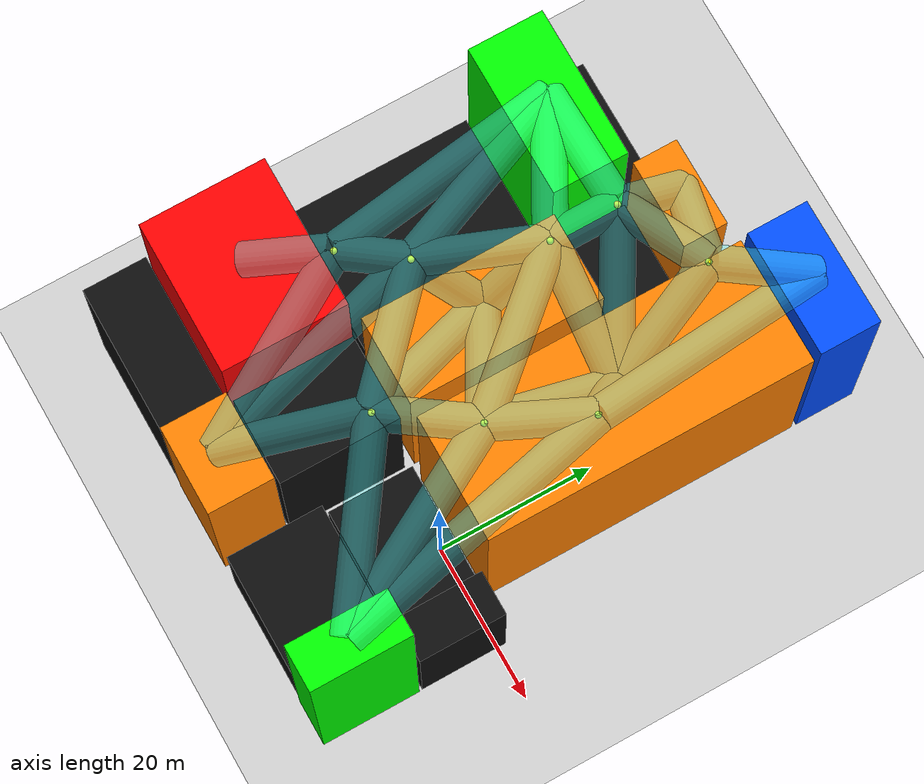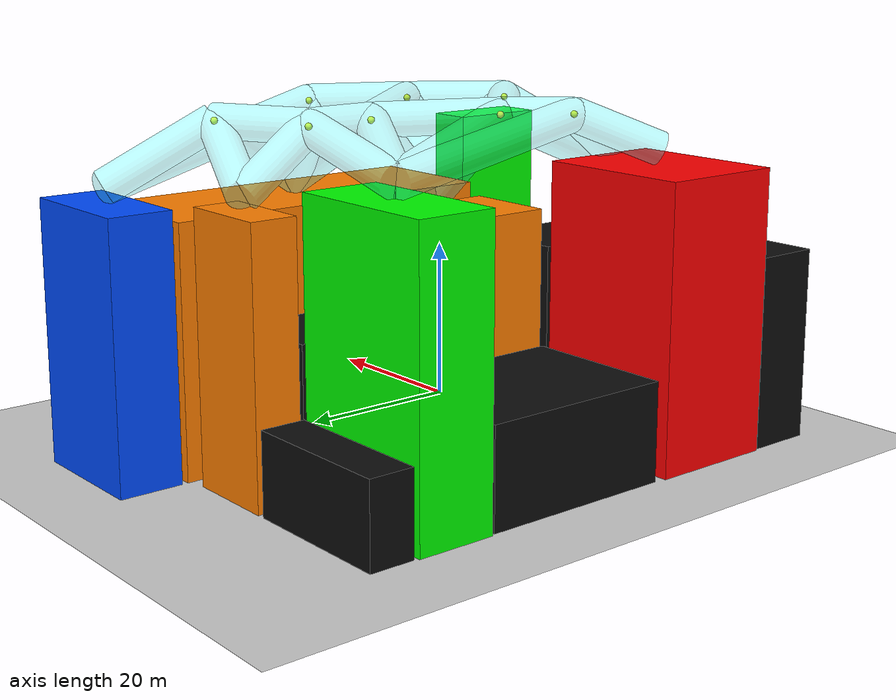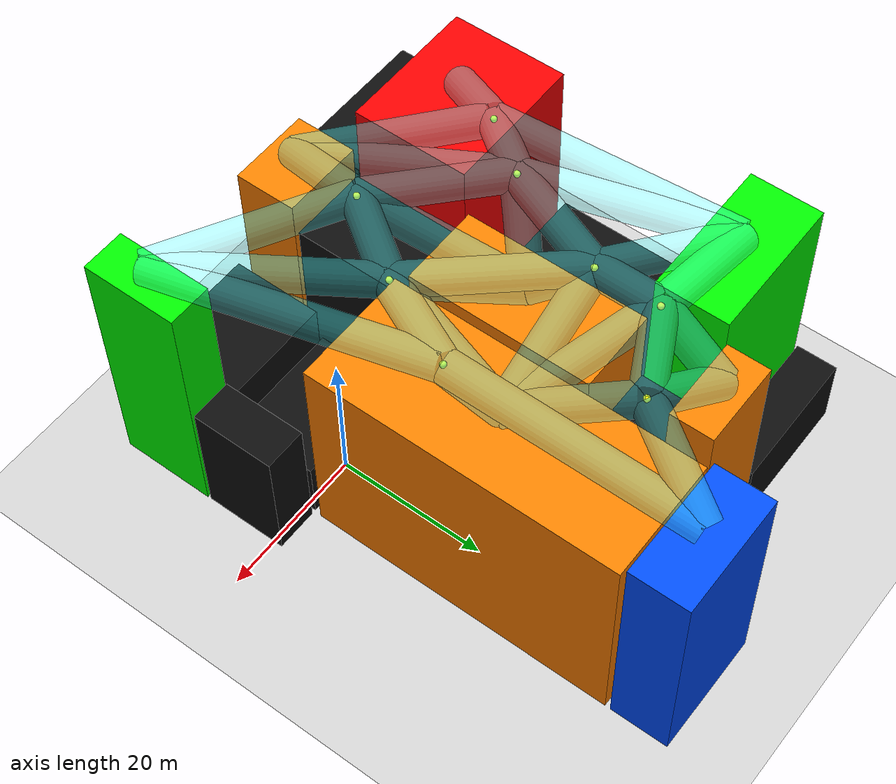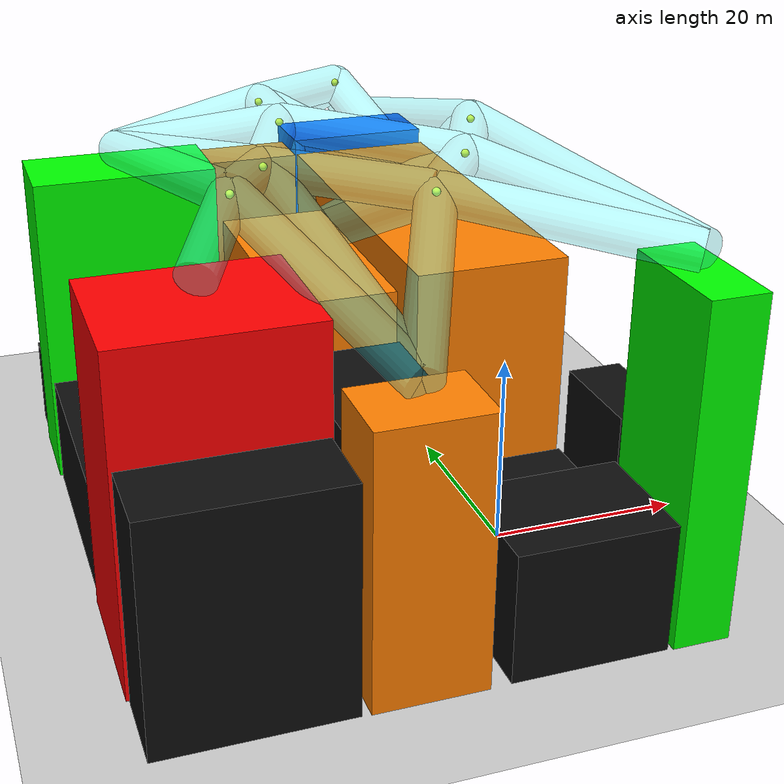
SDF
<sdf version="1.7">
 <world name="utm_world">
  <gravity>0 0 -9.81</gravity>
  <physics name="default_physics" type="ode">
   <max_step_size>0.002</max_step_size>
   <real_time_factor>1.0</real_time_factor>
   <real_time_update_rate>500</real_time_update_rate>
  </physics>
  <scene><ambient>0.5 0.5 0.5 1</ambient><background>0.3 0.3 0.4 1</background></scene>
  <model name="map_ground">
   <static>true</static>
   <link name="link">
    <collision name="collision">
     <geometry>
      <heightmap><uri>file://heightmap.png</uri><size>102.600000 102.600000 1.0</size><pos>0 0 0</pos></heightmap>
     </geometry>
    </collision>
    <visual name="visual">
     <pose>0 0 0.001 0 0 0</pose>
     <geometry><plane><normal>0 0 1</normal><size>102.600000 102.600000</size></plane></geometry>
     <material>
      <script>
       <uri>file://materials/scripts</uri>
       <uri>file://materials/textures</uri>
       <name>UTM/FinalMap</name>
      </script>
     </material>
    </visual>
   </link>
  </model>
  <model name="building_0000">
   <static>true</static>
   <pose>-0.600 47.600 15.360 0 0 0</pose>
   <link name="link">
    <collision name="collision"><geometry><box><size>15.400 7.400 30.719</size></box></geometry></collision>
    <visual name="visual">
     <geometry><box><size>15.400 7.400 30.719</size></box></geometry>
     <material>
      <ambient>0.050 0.050 0.050 1.000</ambient>
      <diffuse>0.050 0.050 0.050 1.000</diffuse>
      <emissive>0.050 0.050 0.050 1.000</emissive>
     </material>
    </visual>
   </link>
  </model>
  <model name="charging_0000">
   <static>true</static>
   <pose>-0.600 47.600 15.460 0 0 0</pose>
   <link name="link">
    <visual name="visual">
     <geometry><box><size>15.862 7.622 30.919</size></box></geometry>
     <material>
      <ambient>0.000 0.300 1.000 1.000</ambient>
      <diffuse>0.000 0.300 1.000 1.000</diffuse>
      <emissive>0.000 0.300 1.000 1.000</emissive>
     </material>
    </visual>
   </link>
  </model>
  <model name="building_0001">
   <static>true</static>
   <pose>-0.600 22.600 14.617 0 0 0</pose>
   <link name="link">
    <collision name="collision"><geometry><box><size>15.400 39.800 29.233</size></box></geometry></collision>
    <visual name="visual">
     <geometry><box><size>15.400 39.800 29.233</size></box></geometry>
     <material>
      <ambient>0.050 0.050 0.050 1.000</ambient>
      <diffuse>0.050 0.050 0.050 1.000</diffuse>
      <emissive>0.050 0.050 0.050 1.000</emissive>
     </material>
    </visual>
   </link>
  </model>
  <model name="client_0001">
   <static>true</static>
   <pose>-0.600 22.600 14.717 0 0 0</pose>
   <link name="link">
    <visual name="visual">
     <geometry><box><size>15.862 40.994 29.433</size></box></geometry>
     <material>
      <ambient>1.000 0.500 0.000 1.000</ambient>
      <diffuse>1.000 0.500 0.000 1.000</diffuse>
      <emissive>1.000 0.500 0.000 1.000</emissive>
     </material>
    </visual>
   </link>
  </model>
  <model name="building_0002">
   <static>true</static>
   <pose>-31.800 39.600 4.826 0 0 0</pose>
   <link name="link">
    <collision name="collision"><geometry><box><size>18.600 5.400 9.652</size></box></geometry></collision>
    <visual name="visual">
     <geometry><box><size>18.600 5.400 9.652</size></box></geometry>
     <material>
      <ambient>0.050 0.050 0.050 1.000</ambient>
      <diffuse>0.050 0.050 0.050 1.000</diffuse>
      <emissive>0.050 0.050 0.050 1.000</emissive>
     </material>
    </visual>
   </link>
  </model>
  <model name="building_0003">
   <static>true</static>
   <pose>-16.100 39.600 15.591 0 0 0</pose>
   <link name="link">
    <collision name="collision"><geometry><box><size>10.800 5.400 31.183</size></box></geometry></collision>
    <visual name="visual">
     <geometry><box><size>10.800 5.400 31.183</size></box></geometry>
     <material>
      <ambient>0.050 0.050 0.050 1.000</ambient>
      <diffuse>0.050 0.050 0.050 1.000</diffuse>
      <emissive>0.050 0.050 0.050 1.000</emissive>
     </material>
    </visual>
   </link>
  </model>
  <model name="client_0003">
   <static>true</static>
   <pose>-16.100 39.600 15.691 0 0 0</pose>
   <link name="link">
    <visual name="visual">
     <geometry><box><size>11.124 5.562 31.383</size></box></geometry>
     <material>
      <ambient>1.000 0.500 0.000 1.000</ambient>
      <diffuse>1.000 0.500 0.000 1.000</diffuse>
      <emissive>1.000 0.500 0.000 1.000</emissive>
     </material>
    </visual>
   </link>
  </model>
  <model name="building_0004">
   <static>true</static>
   <pose>-31.800 31.700 16.861 0 0 0</pose>
   <link name="link">
    <collision name="collision"><geometry><box><size>18.600 9.200 33.722</size></box></geometry></collision>
    <visual name="visual">
     <geometry><box><size>18.600 9.200 33.722</size></box></geometry>
     <material>
      <ambient>0.050 0.050 0.050 1.000</ambient>
      <diffuse>0.050 0.050 0.050 1.000</diffuse>
      <emissive>0.050 0.050 0.050 1.000</emissive>
     </material>
    </visual>
   </link>
  </model>
  <model name="supplier_0004">
   <static>true</static>
   <pose>-31.800 31.700 16.961 0 0 0</pose>
   <link name="link">
    <visual name="visual">
     <geometry><box><size>19.158 9.476 33.922</size></box></geometry>
     <material>
      <ambient>0.000 1.000 0.000 1.000</ambient>
      <diffuse>0.000 1.000 0.000 1.000</diffuse>
      <emissive>0.000 1.000 0.000 1.000</emissive>
     </material>
    </visual>
   </link>
  </model>
  <model name="building_0005">
   <static>true</static>
   <pose>-16.100 31.700 8.757 0 0 0</pose>
   <link name="link">
    <collision name="collision"><geometry><box><size>10.800 9.200 17.515</size></box></geometry></collision>
    <visual name="visual">
     <geometry><box><size>10.800 9.200 17.515</size></box></geometry>
     <material>
      <ambient>0.050 0.050 0.050 1.000</ambient>
      <diffuse>0.050 0.050 0.050 1.000</diffuse>
      <emissive>0.050 0.050 0.050 1.000</emissive>
     </material>
    </visual>
   </link>
  </model>
  <model name="building_0006">
   <static>true</static>
   <pose>-31.800 14.600 5.841 0 0 0</pose>
   <link name="link">
    <collision name="collision"><geometry><box><size>18.600 23.800 11.682</size></box></geometry></collision>
    <visual name="visual">
     <geometry><box><size>18.600 23.800 11.682</size></box></geometry>
     <material>
      <ambient>0.050 0.050 0.050 1.000</ambient>
      <diffuse>0.050 0.050 0.050 1.000</diffuse>
      <emissive>0.050 0.050 0.050 1.000</emissive>
     </material>
    </visual>
   </link>
  </model>
  <model name="building_0007">
   <static>true</static>
   <pose>-16.100 14.600 13.908 0 0 0</pose>
   <link name="link">
    <collision name="collision"><geometry><box><size>10.800 23.800 27.817</size></box></geometry></collision>
    <visual name="visual">
     <geometry><box><size>10.800 23.800 27.817</size></box></geometry>
     <material>
      <ambient>0.050 0.050 0.050 1.000</ambient>
      <diffuse>0.050 0.050 0.050 1.000</diffuse>
      <emissive>0.050 0.050 0.050 1.000</emissive>
     </material>
    </visual>
   </link>
  </model>
  <model name="client_0007">
   <static>true</static>
   <pose>-16.100 14.600 14.008 0 0 0</pose>
   <link name="link">
    <visual name="visual">
     <geometry><box><size>11.124 24.514 28.017</size></box></geometry>
     <material>
      <ambient>1.000 0.500 0.000 1.000</ambient>
      <diffuse>1.000 0.500 0.000 1.000</diffuse>
      <emissive>1.000 0.500 0.000 1.000</emissive>
     </material>
    </visual>
   </link>
  </model>
  <model name="building_0008">
   <static>true</static>
   <pose>-31.800 -6.500 16.722 0 0 0</pose>
   <link name="link">
    <collision name="collision"><geometry><box><size>18.600 15.200 33.444</size></box></geometry></collision>
    <visual name="visual">
     <geometry><box><size>18.600 15.200 33.444</size></box></geometry>
     <material>
      <ambient>0.050 0.050 0.050 1.000</ambient>
      <diffuse>0.050 0.050 0.050 1.000</diffuse>
      <emissive>0.050 0.050 0.050 1.000</emissive>
     </material>
    </visual>
   </link>
  </model>
  <model name="vertiport_0008">
   <static>true</static>
   <pose>-31.800 -6.500 16.822 0 0 0</pose>
   <link name="link">
    <visual name="visual">
     <geometry><box><size>19.158 15.656 33.644</size></box></geometry>
     <material>
      <ambient>1.000 0.000 0.000 1.000</ambient>
      <diffuse>1.000 0.000 0.000 1.000</diffuse>
      <emissive>1.000 0.000 0.000 1.000</emissive>
     </material>
    </visual>
   </link>
  </model>
  <model name="building_0009">
   <static>true</static>
   <pose>-16.100 -6.500 11.648 0 0 0</pose>
   <link name="link">
    <collision name="collision"><geometry><box><size>10.800 15.200 23.296</size></box></geometry></collision>
    <visual name="visual">
     <geometry><box><size>10.800 15.200 23.296</size></box></geometry>
     <material>
      <ambient>0.050 0.050 0.050 1.000</ambient>
      <diffuse>0.050 0.050 0.050 1.000</diffuse>
      <emissive>0.050 0.050 0.050 1.000</emissive>
     </material>
    </visual>
   </link>
  </model>
  <model name="building_0010">
   <static>true</static>
   <pose>-0.700 -4.400 4.262 0 0 0</pose>
   <link name="link">
    <collision name="collision"><geometry><box><size>15.600 11.000 8.523</size></box></geometry></collision>
    <visual name="visual">
     <geometry><box><size>15.600 11.000 8.523</size></box></geometry>
     <material>
      <ambient>0.050 0.050 0.050 1.000</ambient>
      <diffuse>0.050 0.050 0.050 1.000</diffuse>
      <emissive>0.050 0.050 0.050 1.000</emissive>
     </material>
    </visual>
   </link>
  </model>
  <model name="building_0011">
   <static>true</static>
   <pose>10.500 -4.400 8.695 0 0 0</pose>
   <link name="link">
    <collision name="collision"><geometry><box><size>5.600 11.000 17.390</size></box></geometry></collision>
    <visual name="visual">
     <geometry><box><size>5.600 11.000 17.390</size></box></geometry>
     <material>
      <ambient>0.050 0.050 0.050 1.000</ambient>
      <diffuse>0.050 0.050 0.050 1.000</diffuse>
      <emissive>0.050 0.050 0.050 1.000</emissive>
     </material>
    </visual>
   </link>
  </model>
  <model name="building_0012">
   <static>true</static>
   <pose>-0.700 -16.600 6.619 0 0 0</pose>
   <link name="link">
    <collision name="collision"><geometry><box><size>15.600 12.200 13.237</size></box></geometry></collision>
    <visual name="visual">
     <geometry><box><size>15.600 12.200 13.237</size></box></geometry>
     <material>
      <ambient>0.050 0.050 0.050 1.000</ambient>
      <diffuse>0.050 0.050 0.050 1.000</diffuse>
      <emissive>0.050 0.050 0.050 1.000</emissive>
     </material>
    </visual>
   </link>
  </model>
  <model name="building_0013">
   <static>true</static>
   <pose>10.500 -16.600 17.290 0 0 0</pose>
   <link name="link">
    <collision name="collision"><geometry><box><size>5.600 12.200 34.580</size></box></geometry></collision>
    <visual name="visual">
     <geometry><box><size>5.600 12.200 34.580</size></box></geometry>
     <material>
      <ambient>0.050 0.050 0.050 1.000</ambient>
      <diffuse>0.050 0.050 0.050 1.000</diffuse>
      <emissive>0.050 0.050 0.050 1.000</emissive>
     </material>
    </visual>
   </link>
  </model>
  <model name="supplier_0013">
   <static>true</static>
   <pose>10.500 -16.600 17.390 0 0 0</pose>
   <link name="link">
    <visual name="visual">
     <geometry><box><size>5.768 12.566 34.780</size></box></geometry>
     <material>
      <ambient>0.000 1.000 0.000 1.000</ambient>
      <diffuse>0.000 1.000 0.000 1.000</diffuse>
      <emissive>0.000 1.000 0.000 1.000</emissive>
     </material>
    </visual>
   </link>
  </model>
  <model name="building_0014">
   <static>true</static>
   <pose>-31.800 -18.700 11.529 0 0 0</pose>
   <link name="link">
    <collision name="collision"><geometry><box><size>18.600 8.000 23.057</size></box></geometry></collision>
    <visual name="visual">
     <geometry><box><size>18.600 8.000 23.057</size></box></geometry>
     <material>
      <ambient>0.050 0.050 0.050 1.000</ambient>
      <diffuse>0.050 0.050 0.050 1.000</diffuse>
      <emissive>0.050 0.050 0.050 1.000</emissive>
     </material>
    </visual>
   </link>
  </model>
  <model name="building_0015">
   <static>true</static>
   <pose>-16.100 -18.700 13.652 0 0 0</pose>
   <link name="link">
    <collision name="collision"><geometry><box><size>10.800 8.000 27.303</size></box></geometry></collision>
    <visual name="visual">
     <geometry><box><size>10.800 8.000 27.303</size></box></geometry>
     <material>
      <ambient>0.050 0.050 0.050 1.000</ambient>
      <diffuse>0.050 0.050 0.050 1.000</diffuse>
      <emissive>0.050 0.050 0.050 1.000</emissive>
     </material>
    </visual>
   </link>
  </model>
  <model name="client_0015">
   <static>true</static>
   <pose>-16.100 -18.700 13.752 0 0 0</pose>
   <link name="link">
    <visual name="visual">
     <geometry><box><size>11.124 8.240 27.503</size></box></geometry>
     <material>
      <ambient>1.000 0.500 0.000 1.000</ambient>
      <diffuse>1.000 0.500 0.000 1.000</diffuse>
      <emissive>1.000 0.500 0.000 1.000</emissive>
     </material>
    </visual>
   </link>
  </model>
  <model name="LOGICAL_000">
   <static>true</static>
   <pose>3.100 17.867 39.580 0 0 0</pose>
   <link name="link">
    <collision name="collision"><geometry><sphere><radius>0.4</radius></sphere></geometry></collision>
    <visual name="visual">
     <geometry><sphere><radius>0.4</radius></sphere></geometry>
     <material><ambient>1.000 1.000 0.000 1.000</ambient><diffuse>1.000 1.000 0.000 1.000</diffuse></material>
    </visual>
   </link>
  </model>
  <model name="LOGICAL_001">
   <static>true</static>
   <pose>-5.767 36.600 39.580 0 0 0</pose>
   <link name="link">
    <collision name="collision"><geometry><sphere><radius>0.4</radius></sphere></geometry></collision>
    <visual name="visual">
     <geometry><sphere><radius>0.4</radius></sphere></geometry>
     <material><ambient>1.000 1.000 0.000 1.000</ambient><diffuse>1.000 1.000 0.000 1.000</diffuse></material>
    </visual>
   </link>
  </model>
  <model name="LOGICAL_002">
   <static>true</static>
   <pose>-16.167 31.300 39.580 0 0 0</pose>
   <link name="link">
    <collision name="collision"><geometry><sphere><radius>0.4</radius></sphere></geometry></collision>
    <visual name="visual">
     <geometry><sphere><radius>0.4</radius></sphere></geometry>
     <material><ambient>1.000 1.000 0.000 1.000</ambient><diffuse>1.000 1.000 0.000 1.000</diffuse></material>
    </visual>
   </link>
  </model>
  <model name="LOGICAL_003">
   <static>true</static>
   <pose>-16.167 22.967 39.580 0 0 0</pose>
   <link name="link">
    <collision name="collision"><geometry><sphere><radius>0.4</radius></sphere></geometry></collision>
    <visual name="visual">
     <geometry><sphere><radius>0.4</radius></sphere></geometry>
     <material><ambient>1.000 1.000 0.000 1.000</ambient><diffuse>1.000 1.000 0.000 1.000</diffuse></material>
    </visual>
   </link>
  </model>
  <model name="LOGICAL_004">
   <static>true</static>
   <pose>-21.679 8.921 39.580 0 0 0</pose>
   <link name="link">
    <collision name="collision"><geometry><sphere><radius>0.4</radius></sphere></geometry></collision>
    <visual name="visual">
     <geometry><sphere><radius>0.4</radius></sphere></geometry>
     <material><ambient>1.000 1.000 0.000 1.000</ambient><diffuse>1.000 1.000 0.000 1.000</diffuse></material>
    </visual>
   </link>
  </model>
  <model name="LOGICAL_005">
   <static>true</static>
   <pose>-26.567 2.167 39.580 0 0 0</pose>
   <link name="link">
    <collision name="collision"><geometry><sphere><radius>0.4</radius></sphere></geometry></collision>
    <visual name="visual">
     <geometry><sphere><radius>0.4</radius></sphere></geometry>
     <material><ambient>1.000 1.000 0.000 1.000</ambient><diffuse>1.000 1.000 0.000 1.000</diffuse></material>
    </visual>
   </link>
  </model>
  <model name="LOGICAL_006">
   <static>true</static>
   <pose>-2.067 6.867 39.580 0 0 0</pose>
   <link name="link">
    <collision name="collision"><geometry><sphere><radius>0.4</radius></sphere></geometry></collision>
    <visual name="visual">
     <geometry><sphere><radius>0.4</radius></sphere></geometry>
     <material><ambient>1.000 1.000 0.000 1.000</ambient><diffuse>1.000 1.000 0.000 1.000</diffuse></material>
    </visual>
   </link>
  </model>
  <model name="LOGICAL_007">
   <static>true</static>
   <pose>-8.908 -2.987 39.580 0 0 0</pose>
   <link name="link">
    <collision name="collision"><geometry><sphere><radius>0.4</radius></sphere></geometry></collision>
    <visual name="visual">
     <geometry><sphere><radius>0.4</radius></sphere></geometry>
     <material><ambient>1.000 1.000 0.000 1.000</ambient><diffuse>1.000 1.000 0.000 1.000</diffuse></material>
    </visual>
   </link>
  </model>
  <model name="EDGE_00000">
   <static>true</static>
   <link name="link">
    <pose>-29.183 -2.167 37.512 0 1.182976 1.027554</pose>
    <visual name="visual">
     <geometry><cylinder><radius>2.000</radius><length>10.936</length></cylinder></geometry>
     <material>
      <ambient>0.300 1.000 1.000 0.350</ambient>
      <diffuse>0.300 1.000 1.000 0.350</diffuse>
      <emissive>0.300 1.000 1.000 0.350</emissive>
     </material>
     <transparency>0.65</transparency>
     <cast_shadows>false</cast_shadows>
    </visual>
   </link>
  </model>
  <model name="EDGE_00001">
   <static>true</static>
   <link name="link">
    <pose>1.250 32.733 36.149 0 1.345717 -1.446993</pose>
    <visual name="visual">
     <geometry><cylinder><radius>2.000</radius><length>30.738</length></cylinder></geometry>
     <material>
      <ambient>0.300 1.000 1.000 0.350</ambient>
      <diffuse>0.300 1.000 1.000 0.350</diffuse>
      <emissive>0.300 1.000 1.000 0.350</emissive>
     </material>
     <transparency>0.65</transparency>
     <cast_shadows>false</cast_shadows>
    </visual>
   </link>
  </model>
  <model name="EDGE_00002">
   <static>true</static>
   <link name="link">
    <pose>-3.183 42.100 36.149 0 1.056897 -2.009909</pose>
    <visual name="visual">
     <geometry><cylinder><radius>2.000</radius><length>13.956</length></cylinder></geometry>
     <material>
      <ambient>0.300 1.000 1.000 0.350</ambient>
      <diffuse>0.300 1.000 1.000 0.350</diffuse>
      <emissive>0.300 1.000 1.000 0.350</emissive>
     </material>
     <transparency>0.65</transparency>
     <cast_shadows>false</cast_shadows>
    </visual>
   </link>
  </model>
  <model name="EDGE_00003">
   <static>true</static>
   <link name="link">
    <pose>6.800 0.633 38.080 0 1.485900 1.782286</pose>
    <visual name="visual">
     <geometry><cylinder><radius>2.000</radius><length>35.380</length></cylinder></geometry>
     <material>
      <ambient>0.300 1.000 1.000 0.350</ambient>
      <diffuse>0.300 1.000 1.000 0.350</diffuse>
      <emissive>0.300 1.000 1.000 0.350</emissive>
     </material>
     <transparency>0.65</transparency>
     <cast_shadows>false</cast_shadows>
    </visual>
   </link>
  </model>
  <model name="EDGE_00004">
   <static>true</static>
   <link name="link">
    <pose>4.217 -4.867 38.080 0 1.458571 2.062448</pose>
    <visual name="visual">
     <geometry><cylinder><radius>2.000</radius><length>26.788</length></cylinder></geometry>
     <material>
      <ambient>0.300 1.000 1.000 0.350</ambient>
      <diffuse>0.300 1.000 1.000 0.350</diffuse>
      <emissive>0.300 1.000 1.000 0.350</emissive>
     </material>
     <transparency>0.65</transparency>
     <cast_shadows>false</cast_shadows>
    </visual>
   </link>
  </model>
  <model name="EDGE_00005">
   <static>true</static>
   <link name="link">
    <pose>0.796 -9.793 38.080 0 1.444917 2.529907</pose>
    <visual name="visual">
     <geometry><cylinder><radius>2.000</radius><length>23.895</length></cylinder></geometry>
     <material>
      <ambient>0.300 1.000 1.000 0.350</ambient>
      <diffuse>0.300 1.000 1.000 0.350</diffuse>
      <emissive>0.300 1.000 1.000 0.350</emissive>
     </material>
     <transparency>0.65</transparency>
     <cast_shadows>false</cast_shadows>
    </visual>
   </link>
  </model>
  <model name="EDGE_00006">
   <static>true</static>
   <link name="link">
    <pose>-23.983 31.500 37.651 0 1.328945 -0.025581</pose>
    <visual name="visual">
     <geometry><cylinder><radius>2.000</radius><length>16.107</length></cylinder></geometry>
     <material>
      <ambient>0.300 1.000 1.000 0.350</ambient>
      <diffuse>0.300 1.000 1.000 0.350</diffuse>
      <emissive>0.300 1.000 1.000 0.350</emissive>
     </material>
     <transparency>0.65</transparency>
     <cast_shadows>false</cast_shadows>
    </visual>
   </link>
  </model>
  <model name="EDGE_00007">
   <static>true</static>
   <link name="link">
    <pose>-23.983 27.333 37.651 0 1.358614 -0.509449</pose>
    <visual name="visual">
     <geometry><cylinder><radius>2.000</radius><length>18.318</length></cylinder></geometry>
     <material>
      <ambient>0.300 1.000 1.000 0.350</ambient>
      <diffuse>0.300 1.000 1.000 0.350</diffuse>
      <emissive>0.300 1.000 1.000 0.350</emissive>
     </material>
     <transparency>0.65</transparency>
     <cast_shadows>false</cast_shadows>
    </visual>
   </link>
  </model>
  <model name="EDGE_00008">
   <static>true</static>
   <link name="link">
    <pose>-26.740 20.310 37.651 0 1.417249 -1.152701</pose>
    <visual name="visual">
     <geometry><cylinder><radius>2.000</radius><length>25.223</length></cylinder></geometry>
     <material>
      <ambient>0.300 1.000 1.000 0.350</ambient>
      <diffuse>0.300 1.000 1.000 0.350</diffuse>
      <emissive>0.300 1.000 1.000 0.350</emissive>
     </material>
     <transparency>0.65</transparency>
     <cast_shadows>false</cast_shadows>
    </visual>
   </link>
  </model>
  <model name="EDGE_00009">
   <static>true</static>
   <link name="link">
    <pose>-29.183 16.933 37.651 0 1.442881 -1.395416</pose>
    <visual name="visual">
     <geometry><cylinder><radius>2.000</radius><length>30.240</length></cylinder></geometry>
     <material>
      <ambient>0.300 1.000 1.000 0.350</ambient>
      <diffuse>0.300 1.000 1.000 0.350</diffuse>
      <emissive>0.300 1.000 1.000 0.350</emissive>
     </material>
     <transparency>0.65</transparency>
     <cast_shadows>false</cast_shadows>
    </visual>
   </link>
  </model>
  <model name="EDGE_00010">
   <static>true</static>
   <link name="link">
    <pose>1.250 20.233 35.407 0 0.623917 -0.907320</pose>
    <visual name="visual">
     <geometry><cylinder><radius>2.000</radius><length>10.284</length></cylinder></geometry>
     <material>
      <ambient>0.300 1.000 1.000 0.350</ambient>
      <diffuse>0.300 1.000 1.000 0.350</diffuse>
      <emissive>0.300 1.000 1.000 0.350</emissive>
     </material>
     <transparency>0.65</transparency>
     <cast_shadows>false</cast_shadows>
    </visual>
   </link>
  </model>
  <model name="EDGE_00011">
   <static>true</static>
   <link name="link">
    <pose>-3.183 29.600 35.407 0 1.060855 1.924338</pose>
    <visual name="visual">
     <geometry><cylinder><radius>2.000</radius><length>17.098</length></cylinder></geometry>
     <material>
      <ambient>0.300 1.000 1.000 0.350</ambient>
      <diffuse>0.300 1.000 1.000 0.350</diffuse>
      <emissive>0.300 1.000 1.000 0.350</emissive>
     </material>
     <transparency>0.65</transparency>
     <cast_shadows>false</cast_shadows>
    </visual>
   </link>
  </model>
  <model name="EDGE_00012">
   <static>true</static>
   <link name="link">
    <pose>-8.383 26.950 35.407 0 1.133059 2.631952</pose>
    <visual name="visual">
     <geometry><cylinder><radius>2.000</radius><length>19.689</length></cylinder></geometry>
     <material>
      <ambient>0.300 1.000 1.000 0.350</ambient>
      <diffuse>0.300 1.000 1.000 0.350</diffuse>
      <emissive>0.300 1.000 1.000 0.350</emissive>
     </material>
     <transparency>0.65</transparency>
     <cast_shadows>false</cast_shadows>
    </visual>
   </link>
  </model>
  <model name="EDGE_00013">
   <static>true</static>
   <link name="link">
    <pose>-8.383 22.783 35.407 0 1.078761 3.118042</pose>
    <visual name="visual">
     <geometry><cylinder><radius>2.000</radius><length>17.667</length></cylinder></geometry>
     <material>
      <ambient>0.300 1.000 1.000 0.350</ambient>
      <diffuse>0.300 1.000 1.000 0.350</diffuse>
      <emissive>0.300 1.000 1.000 0.350</emissive>
     </material>
     <transparency>0.65</transparency>
     <cast_shadows>false</cast_shadows>
    </visual>
   </link>
  </model>
  <model name="EDGE_00014">
   <static>true</static>
   <link name="link">
    <pose>-1.333 14.733 35.407 0 1.084857 -1.663748</pose>
    <visual name="visual">
     <geometry><cylinder><radius>2.000</radius><length>17.870</length></cylinder></geometry>
     <material>
      <ambient>0.300 1.000 1.000 0.350</ambient>
      <diffuse>0.300 1.000 1.000 0.350</diffuse>
      <emissive>0.300 1.000 1.000 0.350</emissive>
     </material>
     <transparency>0.65</transparency>
     <cast_shadows>false</cast_shadows>
    </visual>
   </link>
  </model>
  <model name="EDGE_00015">
   <static>true</static>
   <link name="link">
    <pose>-18.890 -4.890 34.441 0 1.221096 1.770117</pose>
    <visual name="visual">
     <geometry><cylinder><radius>2.000</radius><length>29.994</length></cylinder></geometry>
     <material>
      <ambient>0.300 1.000 1.000 0.350</ambient>
      <diffuse>0.300 1.000 1.000 0.350</diffuse>
      <emissive>0.300 1.000 1.000 0.350</emissive>
     </material>
     <transparency>0.65</transparency>
     <cast_shadows>false</cast_shadows>
    </visual>
   </link>
  </model>
  <model name="EDGE_00016">
   <static>true</static>
   <link name="link">
    <pose>-21.333 -8.267 34.441 0 1.156113 2.035721</pose>
    <visual name="visual">
     <geometry><cylinder><radius>2.000</radius><length>25.506</length></cylinder></geometry>
     <material>
      <ambient>0.300 1.000 1.000 0.350</ambient>
      <diffuse>0.300 1.000 1.000 0.350</diffuse>
      <emissive>0.300 1.000 1.000 0.350</emissive>
     </material>
     <transparency>0.65</transparency>
     <cast_shadows>false</cast_shadows>
    </visual>
   </link>
  </model>
  <model name="EDGE_00017">
   <static>true</static>
   <link name="link">
    <pose>-12.504 -10.843 34.441 0 1.034305 1.141548</pose>
    <visual name="visual">
     <geometry><cylinder><radius>2.000</radius><length>20.106</length></cylinder></geometry>
     <material>
      <ambient>0.300 1.000 1.000 0.350</ambient>
      <diffuse>0.300 1.000 1.000 0.350</diffuse>
      <emissive>0.300 1.000 1.000 0.350</emissive>
     </material>
     <transparency>0.65</transparency>
     <cast_shadows>false</cast_shadows>
    </visual>
   </link>
  </model>
  <model name="EDGE_00018">
   <static>true</static>
   <link name="link">
    <pose>-10.933 38.100 36.381 0 1.034420 -0.282555</pose>
    <visual name="visual">
     <geometry><cylinder><radius>2.000</radius><length>12.518</length></cylinder></geometry>
     <material>
      <ambient>0.300 1.000 1.000 0.350</ambient>
      <diffuse>0.300 1.000 1.000 0.350</diffuse>
      <emissive>0.300 1.000 1.000 0.350</emissive>
     </material>
     <transparency>0.65</transparency>
     <cast_shadows>false</cast_shadows>
    </visual>
   </link>
  </model>
  <model name="EDGE_00019">
   <static>true</static>
   <link name="link">
    <pose>-16.133 35.450 36.381 0 0.914180 -1.578828</pose>
    <visual name="visual">
     <geometry><cylinder><radius>2.000</radius><length>10.479</length></cylinder></geometry>
     <material>
      <ambient>0.300 1.000 1.000 0.350</ambient>
      <diffuse>0.300 1.000 1.000 0.350</diffuse>
      <emissive>0.300 1.000 1.000 0.350</emissive>
     </material>
     <transparency>0.65</transparency>
     <cast_shadows>false</cast_shadows>
    </visual>
   </link>
  </model>
  <model name="EDGE_00020">
   <static>true</static>
   <link name="link">
    <pose>-16.133 18.783 34.698 0 0.708543 1.578764</pose>
    <visual name="visual">
     <geometry><cylinder><radius>2.000</radius><length>12.858</length></cylinder></geometry>
     <material>
      <ambient>0.300 1.000 1.000 0.350</ambient>
      <diffuse>0.300 1.000 1.000 0.350</diffuse>
      <emissive>0.300 1.000 1.000 0.350</emissive>
     </material>
     <transparency>0.65</transparency>
     <cast_shadows>false</cast_shadows>
    </visual>
   </link>
  </model>
  <model name="EDGE_00021">
   <static>true</static>
   <link name="link">
    <pose>-18.890 11.760 34.698 0 0.684093 -2.347349</pose>
    <visual name="visual">
     <geometry><cylinder><radius>2.000</radius><length>12.598</length></cylinder></geometry>
     <material>
      <ambient>0.300 1.000 1.000 0.350</ambient>
      <diffuse>0.300 1.000 1.000 0.350</diffuse>
      <emissive>0.300 1.000 1.000 0.350</emissive>
     </material>
     <transparency>0.65</transparency>
     <cast_shadows>false</cast_shadows>
    </visual>
   </link>
  </model>
  <model name="EDGE_00022">
   <static>true</static>
   <link name="link">
    <pose>-9.083 10.733 34.698 0 1.023557 -0.503663</pose>
    <visual name="visual">
     <geometry><cylinder><radius>2.000</radius><length>18.763</length></cylinder></geometry>
     <material>
      <ambient>0.300 1.000 1.000 0.350</ambient>
      <diffuse>0.300 1.000 1.000 0.350</diffuse>
      <emissive>0.300 1.000 1.000 0.350</emissive>
     </material>
     <transparency>0.65</transparency>
     <cast_shadows>false</cast_shadows>
    </visual>
   </link>
  </model>
  <model name="EDGE_00023">
   <static>true</static>
   <link name="link">
    <pose>-12.504 5.807 34.698 0 1.096145 -1.182595</pose>
    <visual name="visual">
     <geometry><cylinder><radius>2.000</radius><length>21.362</length></cylinder></geometry>
     <material>
      <ambient>0.300 1.000 1.000 0.350</ambient>
      <diffuse>0.300 1.000 1.000 0.350</diffuse>
      <emissive>0.300 1.000 1.000 0.350</emissive>
     </material>
     <transparency>0.65</transparency>
     <cast_shadows>false</cast_shadows>
    </visual>
   </link>
  </model>
  <model name="EDGE_00024">
   <static>true</static>
   <link name="link">
    <pose>-16.167 27.133 39.580 0 1.570796 -1.570796</pose>
    <visual name="visual">
     <geometry><cylinder><radius>2.000</radius><length>8.333</length></cylinder></geometry>
     <material>
      <ambient>0.300 1.000 1.000 0.350</ambient>
      <diffuse>0.300 1.000 1.000 0.350</diffuse>
      <emissive>0.300 1.000 1.000 0.350</emissive>
     </material>
     <transparency>0.65</transparency>
     <cast_shadows>false</cast_shadows>
    </visual>
   </link>
  </model>
  <model name="EDGE_00025">
   <static>true</static>
   <link name="link">
    <pose>-24.123 5.544 39.580 0 1.570796 -2.197167</pose>
    <visual name="visual">
     <geometry><cylinder><radius>2.000</radius><length>8.337</length></cylinder></geometry>
     <material>
      <ambient>0.300 1.000 1.000 0.350</ambient>
      <diffuse>0.300 1.000 1.000 0.350</diffuse>
      <emissive>0.300 1.000 1.000 0.350</emissive>
     </material>
     <transparency>0.65</transparency>
     <cast_shadows>false</cast_shadows>
    </visual>
   </link>
  </model>
  <model name="EDGE_00026">
   <static>true</static>
   <link name="link">
    <pose>-10.967 33.950 39.580 0 1.570796 -2.670282</pose>
    <visual name="visual">
     <geometry><cylinder><radius>2.000</radius><length>11.673</length></cylinder></geometry>
     <material>
      <ambient>0.300 1.000 1.000 0.350</ambient>
      <diffuse>0.300 1.000 1.000 0.350</diffuse>
      <emissive>0.300 1.000 1.000 0.350</emissive>
     </material>
     <transparency>0.65</transparency>
     <cast_shadows>false</cast_shadows>
    </visual>
   </link>
  </model>
  <model name="EDGE_00027">
   <static>true</static>
   <link name="link">
    <pose>-5.487 1.940 39.580 0 1.570796 -2.177685</pose>
    <visual name="visual">
     <geometry><cylinder><radius>2.000</radius><length>11.995</length></cylinder></geometry>
     <material>
      <ambient>0.300 1.000 1.000 0.350</ambient>
      <diffuse>0.300 1.000 1.000 0.350</diffuse>
      <emissive>0.300 1.000 1.000 0.350</emissive>
     </material>
     <transparency>0.65</transparency>
     <cast_shadows>false</cast_shadows>
    </visual>
   </link>
  </model>
  <model name="EDGE_00028">
   <static>true</static>
   <link name="link">
    <pose>0.517 12.367 39.580 0 1.570796 -2.009909</pose>
    <visual name="visual">
     <geometry><cylinder><radius>2.000</radius><length>12.153</length></cylinder></geometry>
     <material>
      <ambient>0.300 1.000 1.000 0.350</ambient>
      <diffuse>0.300 1.000 1.000 0.350</diffuse>
      <emissive>0.300 1.000 1.000 0.350</emissive>
     </material>
     <transparency>0.65</transparency>
     <cast_shadows>false</cast_shadows>
    </visual>
   </link>
  </model>
  <model name="EDGE_00029">
   <static>true</static>
   <link name="link">
    <pose>-18.923 15.944 39.580 0 1.570796 -1.944812</pose>
    <visual name="visual">
     <geometry><cylinder><radius>2.000</radius><length>15.089</length></cylinder></geometry>
     <material>
      <ambient>0.300 1.000 1.000 0.350</ambient>
      <diffuse>0.300 1.000 1.000 0.350</diffuse>
      <emissive>0.300 1.000 1.000 0.350</emissive>
     </material>
     <transparency>0.65</transparency>
     <cast_shadows>false</cast_shadows>
    </visual>
   </link>
  </model>
  <model name="EDGE_00030">
   <static>true</static>
   <link name="link">
    <pose>-15.294 2.967 39.580 0 1.570796 -0.750403</pose>
    <visual name="visual">
     <geometry><cylinder><radius>2.000</radius><length>17.462</length></cylinder></geometry>
     <material>
      <ambient>0.300 1.000 1.000 0.350</ambient>
      <diffuse>0.300 1.000 1.000 0.350</diffuse>
      <emissive>0.300 1.000 1.000 0.350</emissive>
     </material>
     <transparency>0.65</transparency>
     <cast_shadows>false</cast_shadows>
    </visual>
   </link>
  </model>
  <model name="EDGE_00031">
   <static>true</static>
   <link name="link">
    <pose>-9.117 14.917 39.580 0 1.570796 -0.851527</pose>
    <visual name="visual">
     <geometry><cylinder><radius>2.000</radius><length>21.401</length></cylinder></geometry>
     <material>
      <ambient>0.300 1.000 1.000 0.350</ambient>
      <diffuse>0.300 1.000 1.000 0.350</diffuse>
      <emissive>0.300 1.000 1.000 0.350</emissive>
     </material>
     <transparency>0.65</transparency>
     <cast_shadows>false</cast_shadows>
    </visual>
   </link>
  </model>
  <plugin name="gazebo_ros_state" filename="libgazebo_ros_state.so">
   <ros><namespace>gazebo</namespace></ros>
  </plugin>
 </world>
</sdf>
